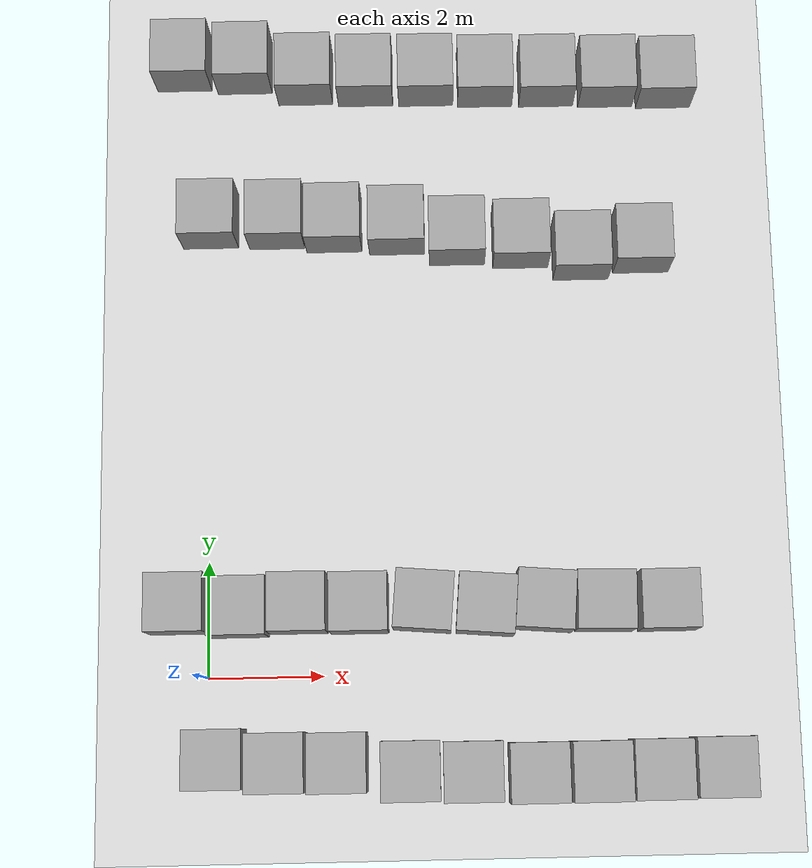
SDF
<sdf version="1.7">
 <world name="default">
  <model name="ground_plane">
   <static>1</static>
   <link name="link">
    <collision name="collision">
     <geometry><plane><normal>0 0 1</normal><size>100 100</size></plane></geometry>
     <surface><friction><ode><mu>100</mu><mu2>50</mu2></ode></friction></surface>
    </collision>
    <visual name="visual">
     <cast_shadows>0</cast_shadows>
     <geometry><plane><normal>0 0 1</normal><size>100 100</size></plane></geometry>
     <material>
      <script><uri>file://media/materials/scripts/gazebo.material</uri><name>Gazebo/Grey</name></script>
     </material>
    </visual>
   </link>
  </model>
  <model name="unit_box">
   <pose>0.555507 1.19168 0.499995 0 1e-05 0</pose>
   <link name="link">
    <inertial>
     <mass>1</mass>
     <inertia>
      <ixx>0.166667</ixx>
      <ixy>0</ixy>
      <ixz>0</ixz>
      <iyy>0.166667</iyy>
      <iyz>0</iyz>
      <izz>0.166667</izz>
     </inertia>
    </inertial>
    <collision name="collision"><geometry><box><size>1 1 1</size></box></geometry></collision>
    <visual name="visual">
     <geometry><box><size>1 1 1</size></box></geometry>
     <material>
      <script><name>Gazebo/Grey</name><uri>file://media/materials/scripts/gazebo.material</uri></script>
     </material>
    </visual>
   </link>
  </model>
  <model name="unit_box_0">
   <pose>1.57825 1.23788 0.499995 0 -1e-05 0</pose>
   <link name="link">
    <inertial>
     <mass>1</mass>
     <inertia>
      <ixx>0.166667</ixx>
      <ixy>0</ixy>
      <ixz>0</ixz>
      <iyy>0.166667</iyy>
      <iyz>0</iyz>
      <izz>0.166667</izz>
     </inertia>
    </inertial>
    <collision name="collision"><geometry><box><size>1 1 1</size></box></geometry></collision>
    <visual name="visual">
     <geometry><box><size>1 1 1</size></box></geometry>
     <material>
      <script><name>Gazebo/Grey</name><uri>file://media/materials/scripts/gazebo.material</uri></script>
     </material>
    </visual>
   </link>
  </model>
  <model name="unit_box_1">
   <pose>2.63146 1.21638 0.499995 0 1e-05 0</pose>
   <link name="link">
    <inertial>
     <mass>1</mass>
     <inertia>
      <ixx>0.166667</ixx>
      <ixy>0</ixy>
      <ixz>0</ixz>
      <iyy>0.166667</iyy>
      <iyz>0</iyz>
      <izz>0.166667</izz>
     </inertia>
    </inertial>
    <collision name="collision"><geometry><box><size>1 1 1</size></box></geometry></collision>
    <visual name="visual">
     <geometry><box><size>1 1 1</size></box></geometry>
     <material>
      <script><name>Gazebo/Grey</name><uri>file://media/materials/scripts/gazebo.material</uri></script>
     </material>
    </visual>
   </link>
  </model>
  <model name="unit_box_2">
   <pose>3.74606 1.22705 0.499995 -1e-05 -0 -0.082022</pose>
   <link name="link">
    <inertial>
     <mass>1</mass>
     <inertia>
      <ixx>0.166667</ixx>
      <ixy>0</ixy>
      <ixz>0</ixz>
      <iyy>0.166667</iyy>
      <iyz>0</iyz>
      <izz>0.166667</izz>
     </inertia>
    </inertial>
    <collision name="collision"><geometry><box><size>1 1 1</size></box></geometry></collision>
    <visual name="visual">
     <geometry><box><size>1 1 1</size></box></geometry>
     <material>
      <script><name>Gazebo/Grey</name><uri>file://media/materials/scripts/gazebo.material</uri></script>
     </material>
    </visual>
   </link>
  </model>
  <model name="unit_box_3">
   <pose>4.82643 1.14872 0.499995 -1e-05 0 -0.080673</pose>
   <link name="link">
    <inertial>
     <mass>1</mass>
     <inertia>
      <ixx>0.166667</ixx>
      <ixy>0</ixy>
      <ixz>0</ixz>
      <iyy>0.166667</iyy>
      <iyz>0</iyz>
      <izz>0.166667</izz>
     </inertia>
    </inertial>
    <collision name="collision"><geometry><box><size>1 1 1</size></box></geometry></collision>
    <visual name="visual">
     <geometry><box><size>1 1 1</size></box></geometry>
     <material>
      <script><name>Gazebo/Grey</name><uri>file://media/materials/scripts/gazebo.material</uri></script>
     </material>
    </visual>
   </link>
  </model>
  <model name="unit_box_4">
   <pose>5.83439 1.19515 0.499995 -1e-05 -0 -0.078203</pose>
   <link name="link">
    <inertial>
     <mass>1</mass>
     <inertia>
      <ixx>0.166667</ixx>
      <ixy>0</ixy>
      <ixz>0</ixz>
      <iyy>0.166667</iyy>
      <iyz>0</iyz>
      <izz>0.166667</izz>
     </inertia>
    </inertial>
    <collision name="collision"><geometry><box><size>1 1 1</size></box></geometry></collision>
    <visual name="visual">
     <geometry><box><size>1 1 1</size></box></geometry>
     <material>
      <script><name>Gazebo/Grey</name><uri>file://media/materials/scripts/gazebo.material</uri></script>
     </material>
    </visual>
   </link>
  </model>
  <model name="unit_box_5">
   <pose>6.86221 1.16701 0.499995 -1e-05 -0 -0.020162</pose>
   <link name="link">
    <inertial>
     <mass>1</mass>
     <inertia>
      <ixx>0.166667</ixx>
      <ixy>0</ixy>
      <ixz>0</ixz>
      <iyy>0.166667</iyy>
      <iyz>0</iyz>
      <izz>0.166667</izz>
     </inertia>
    </inertial>
    <collision name="collision"><geometry><box><size>1 1 1</size></box></geometry></collision>
    <visual name="visual">
     <geometry><box><size>1 1 1</size></box></geometry>
     <material>
      <script><name>Gazebo/Grey</name><uri>file://media/materials/scripts/gazebo.material</uri></script>
     </material>
    </visual>
   </link>
  </model>
  <model name="unit_box_6">
   <pose>7.9487 1.15327 0.499995 -1e-05 0 0</pose>
   <link name="link">
    <inertial>
     <mass>1</mass>
     <inertia>
      <ixx>0.166667</ixx>
      <ixy>0</ixy>
      <ixz>0</ixz>
      <iyy>0.166667</iyy>
      <iyz>0</iyz>
      <izz>0.166667</izz>
     </inertia>
    </inertial>
    <collision name="collision"><geometry><box><size>1 1 1</size></box></geometry></collision>
    <visual name="visual">
     <geometry><box><size>1 1 1</size></box></geometry>
     <material>
      <script><name>Gazebo/Grey</name><uri>file://media/materials/scripts/gazebo.material</uri></script>
     </material>
    </visual>
   </link>
  </model>
  <model name="unit_box_8">
   <pose>8.76045 -1.66109 0.499995 0 -1e-05 0</pose>
   <link name="link">
    <inertial>
     <mass>1</mass>
     <inertia>
      <ixx>0.166667</ixx>
      <ixy>0</ixy>
      <ixz>0</ixz>
      <iyy>0.166667</iyy>
      <iyz>0</iyz>
      <izz>0.166667</izz>
     </inertia>
    </inertial>
    <collision name="collision"><geometry><box><size>1 1 1</size></box></geometry></collision>
    <visual name="visual">
     <geometry><box><size>1 1 1</size></box></geometry>
     <material>
      <script><name>Gazebo/Grey</name><uri>file://media/materials/scripts/gazebo.material</uri></script>
     </material>
    </visual>
   </link>
  </model>
  <model name="unit_box_9">
   <pose>7.71543 -1.67512 0.499995 0 1e-05 0</pose>
   <link name="link">
    <inertial>
     <mass>1</mass>
     <inertia>
      <ixx>0.166667</ixx>
      <ixy>0</ixy>
      <ixz>0</ixz>
      <iyy>0.166667</iyy>
      <iyz>0</iyz>
      <izz>0.166667</izz>
     </inertia>
    </inertial>
    <collision name="collision"><geometry><box><size>1 1 1</size></box></geometry></collision>
    <visual name="visual">
     <geometry><box><size>1 1 1</size></box></geometry>
     <material>
      <script><name>Gazebo/Grey</name><uri>file://media/materials/scripts/gazebo.material</uri></script>
     </material>
    </visual>
   </link>
  </model>
  <model name="unit_box_10">
   <pose>6.68845 -1.68927 0.499995 -1e-05 0 0</pose>
   <link name="link">
    <inertial>
     <mass>1</mass>
     <inertia>
      <ixx>0.166667</ixx>
      <ixy>0</ixy>
      <ixz>0</ixz>
      <iyy>0.166667</iyy>
      <iyz>0</iyz>
      <izz>0.166667</izz>
     </inertia>
    </inertial>
    <collision name="collision"><geometry><box><size>1 1 1</size></box></geometry></collision>
    <visual name="visual">
     <geometry><box><size>1 1 1</size></box></geometry>
     <material>
      <script><name>Gazebo/Grey</name><uri>file://media/materials/scripts/gazebo.material</uri></script>
     </material>
    </visual>
   </link>
  </model>
  <model name="unit_box_11">
   <pose>5.63972 -1.68978 0.499995 0 1e-05 0</pose>
   <link name="link">
    <inertial>
     <mass>1</mass>
     <inertia>
      <ixx>0.166667</ixx>
      <ixy>0</ixy>
      <ixz>0</ixz>
      <iyy>0.166667</iyy>
      <iyz>0</iyz>
      <izz>0.166667</izz>
     </inertia>
    </inertial>
    <collision name="collision"><geometry><box><size>1 1 1</size></box></geometry></collision>
    <visual name="visual">
     <geometry><box><size>1 1 1</size></box></geometry>
     <material>
      <script><name>Gazebo/Grey</name><uri>file://media/materials/scripts/gazebo.material</uri></script>
     </material>
    </visual>
   </link>
  </model>
  <model name="unit_box_12">
   <pose>4.52806 -1.6504 0.499995 -1e-05 0 0</pose>
   <link name="link">
    <inertial>
     <mass>1</mass>
     <inertia>
      <ixx>0.166667</ixx>
      <ixy>0</ixy>
      <ixz>0</ixz>
      <iyy>0.166667</iyy>
      <iyz>0</iyz>
      <izz>0.166667</izz>
     </inertia>
    </inertial>
    <collision name="collision"><geometry><box><size>1 1 1</size></box></geometry></collision>
    <visual name="visual">
     <geometry><box><size>1 1 1</size></box></geometry>
     <material>
      <script><name>Gazebo/Grey</name><uri>file://media/materials/scripts/gazebo.material</uri></script>
     </material>
    </visual>
   </link>
  </model>
  <model name="unit_box_13">
   <pose>3.47624 -1.6198 0.499995 0 1e-05 0</pose>
   <link name="link">
    <inertial>
     <mass>1</mass>
     <inertia>
      <ixx>0.166667</ixx>
      <ixy>0</ixy>
      <ixz>0</ixz>
      <iyy>0.166667</iyy>
      <iyz>0</iyz>
      <izz>0.166667</izz>
     </inertia>
    </inertial>
    <collision name="collision"><geometry><box><size>1 1 1</size></box></geometry></collision>
    <visual name="visual">
     <geometry><box><size>1 1 1</size></box></geometry>
     <material>
      <script><name>Gazebo/Grey</name><uri>file://media/materials/scripts/gazebo.material</uri></script>
     </material>
    </visual>
   </link>
  </model>
  <model name="unit_box_14">
   <pose>2.2423 -1.45852 0.499995 0 -1e-05 0</pose>
   <link name="link">
    <inertial>
     <mass>1</mass>
     <inertia>
      <ixx>0.166667</ixx>
      <ixy>0</ixy>
      <ixz>0</ixz>
      <iyy>0.166667</iyy>
      <iyz>0</iyz>
      <izz>0.166667</izz>
     </inertia>
    </inertial>
    <collision name="collision"><geometry><box><size>1 1 1</size></box></geometry></collision>
    <visual name="visual">
     <geometry><box><size>1 1 1</size></box></geometry>
     <material>
      <script><name>Gazebo/Grey</name><uri>file://media/materials/scripts/gazebo.material</uri></script>
     </material>
    </visual>
   </link>
  </model>
  <model name="unit_box_15">
   <pose>1.19901 -1.44068 0.5 -0 -0 -0</pose>
   <link name="link">
    <inertial>
     <mass>1</mass>
     <inertia>
      <ixx>0.166667</ixx>
      <ixy>0</ixy>
      <ixz>0</ixz>
      <iyy>0.166667</iyy>
      <iyz>0</iyz>
      <izz>0.166667</izz>
     </inertia>
    </inertial>
    <collision name="collision"><geometry><box><size>1 1 1</size></box></geometry></collision>
    <visual name="visual">
     <geometry><box><size>1 1 1</size></box></geometry>
     <material>
      <script><name>Gazebo/Grey</name><uri>file://media/materials/scripts/gazebo.material</uri></script>
     </material>
    </visual>
   </link>
  </model>
  <model name="unit_box_46">
   <pose>8.33103 10.7601 0.499995 -1e-05 0 0</pose>
   <link name="link">
    <inertial>
     <mass>1</mass>
     <inertia>
      <ixx>0.166667</ixx>
      <ixy>0</ixy>
      <ixz>0</ixz>
      <iyy>0.166667</iyy>
      <iyz>0</iyz>
      <izz>0.166667</izz>
     </inertia>
    </inertial>
    <collision name="collision"><geometry><box><size>1 1 1</size></box></geometry></collision>
    <visual name="visual">
     <geometry><box><size>1 1 1</size></box></geometry>
     <material>
      <script><name>Gazebo/Grey</name><uri>file://media/materials/scripts/gazebo.material</uri></script>
     </material>
    </visual>
   </link>
  </model>
  <model name="unit_box_52">
   <pose>7.26487 10.8009 0.499995 0 1e-05 0</pose>
   <link name="link">
    <inertial>
     <mass>1</mass>
     <inertia>
      <ixx>0.166667</ixx>
      <ixy>0</ixy>
      <ixz>0</ixz>
      <iyy>0.166667</iyy>
      <iyz>0</iyz>
      <izz>0.166667</izz>
     </inertia>
    </inertial>
    <collision name="collision"><geometry><box><size>1 1 1</size></box></geometry></collision>
    <visual name="visual">
     <geometry><box><size>1 1 1</size></box></geometry>
     <material>
      <script><name>Gazebo/Grey</name><uri>file://media/materials/scripts/gazebo.material</uri></script>
     </material>
    </visual>
   </link>
  </model>
  <model name="unit_box_53">
   <pose>6.17175 10.8343 0.499995 -1e-05 0 0</pose>
   <link name="link">
    <inertial>
     <mass>1</mass>
     <inertia>
      <ixx>0.166667</ixx>
      <ixy>0</ixy>
      <ixz>0</ixz>
      <iyy>0.166667</iyy>
      <iyz>0</iyz>
      <izz>0.166667</izz>
     </inertia>
    </inertial>
    <collision name="collision"><geometry><box><size>1 1 1</size></box></geometry></collision>
    <visual name="visual">
     <geometry><box><size>1 1 1</size></box></geometry>
     <material>
      <script><name>Gazebo/Grey</name><uri>file://media/materials/scripts/gazebo.material</uri></script>
     </material>
    </visual>
   </link>
  </model>
  <model name="unit_box_54">
   <pose>5.04461 10.852 0.499995 0 1e-05 0</pose>
   <link name="link">
    <inertial>
     <mass>1</mass>
     <inertia>
      <ixx>0.166667</ixx>
      <ixy>0</ixy>
      <ixz>0</ixz>
      <iyy>0.166667</iyy>
      <iyz>0</iyz>
      <izz>0.166667</izz>
     </inertia>
    </inertial>
    <collision name="collision"><geometry><box><size>1 1 1</size></box></geometry></collision>
    <visual name="visual">
     <geometry><box><size>1 1 1</size></box></geometry>
     <material>
      <script><name>Gazebo/Grey</name><uri>file://media/materials/scripts/gazebo.material</uri></script>
     </material>
    </visual>
   </link>
  </model>
  <model name="unit_box_55">
   <pose>3.95809 10.893 0.499995 -1e-05 0 0</pose>
   <link name="link">
    <inertial>
     <mass>1</mass>
     <inertia>
      <ixx>0.166667</ixx>
      <ixy>0</ixy>
      <ixz>0</ixz>
      <iyy>0.166667</iyy>
      <iyz>0</iyz>
      <izz>0.166667</izz>
     </inertia>
    </inertial>
    <collision name="collision"><geometry><box><size>1 1 1</size></box></geometry></collision>
    <visual name="visual">
     <geometry><box><size>1 1 1</size></box></geometry>
     <material>
      <script><name>Gazebo/Grey</name><uri>file://media/materials/scripts/gazebo.material</uri></script>
     </material>
    </visual>
   </link>
  </model>
  <model name="unit_box_56">
   <pose>7.78281 7.61521 0.499995 1e-05 -0 0</pose>
   <link name="link">
    <inertial>
     <mass>1</mass>
     <inertia>
      <ixx>0.166667</ixx>
      <ixy>0</ixy>
      <ixz>0</ixz>
      <iyy>0.166667</iyy>
      <iyz>0</iyz>
      <izz>0.166667</izz>
     </inertia>
    </inertial>
    <collision name="collision"><geometry><box><size>1 1 1</size></box></geometry></collision>
    <visual name="visual">
     <geometry><box><size>1 1 1</size></box></geometry>
     <material>
      <script><name>Gazebo/Grey</name><uri>file://media/materials/scripts/gazebo.material</uri></script>
     </material>
    </visual>
   </link>
  </model>
  <model name="unit_box_57">
   <pose>6.69164 7.50635 0.499995 -1e-05 0 0</pose>
   <link name="link">
    <inertial>
     <mass>1</mass>
     <inertia>
      <ixx>0.166667</ixx>
      <ixy>0</ixy>
      <ixz>0</ixz>
      <iyy>0.166667</iyy>
      <iyz>0</iyz>
      <izz>0.166667</izz>
     </inertia>
    </inertial>
    <collision name="collision"><geometry><box><size>1 1 1</size></box></geometry></collision>
    <visual name="visual">
     <geometry><box><size>1 1 1</size></box></geometry>
     <material>
      <script><name>Gazebo/Grey</name><uri>file://media/materials/scripts/gazebo.material</uri></script>
     </material>
    </visual>
   </link>
  </model>
  <model name="unit_box_58">
   <pose>5.60862 7.74772 0.499995 1e-05 -0 0</pose>
   <link name="link">
    <inertial>
     <mass>1</mass>
     <inertia>
      <ixx>0.166667</ixx>
      <ixy>0</ixy>
      <ixz>0</ixz>
      <iyy>0.166667</iyy>
      <iyz>0</iyz>
      <izz>0.166667</izz>
     </inertia>
    </inertial>
    <collision name="collision"><geometry><box><size>1 1 1</size></box></geometry></collision>
    <visual name="visual">
     <geometry><box><size>1 1 1</size></box></geometry>
     <material>
      <script><name>Gazebo/Grey</name><uri>file://media/materials/scripts/gazebo.material</uri></script>
     </material>
    </visual>
   </link>
  </model>
  <model name="unit_box_59">
   <pose>4.46278 7.82964 0.499995 0 1e-05 0</pose>
   <link name="link">
    <inertial>
     <mass>1</mass>
     <inertia>
      <ixx>0.166667</ixx>
      <ixy>0</ixy>
      <ixz>0</ixz>
      <iyy>0.166667</iyy>
      <iyz>0</iyz>
      <izz>0.166667</izz>
     </inertia>
    </inertial>
    <collision name="collision"><geometry><box><size>1 1 1</size></box></geometry></collision>
    <visual name="visual">
     <geometry><box><size>1 1 1</size></box></geometry>
     <material>
      <script><name>Gazebo/Grey</name><uri>file://media/materials/scripts/gazebo.material</uri></script>
     </material>
    </visual>
   </link>
  </model>
  <model name="unit_box_60">
   <pose>2.84719 10.9112 0.499995 -1e-05 0 0</pose>
   <link name="link">
    <inertial>
     <mass>1</mass>
     <inertia>
      <ixx>0.166667</ixx>
      <ixy>0</ixy>
      <ixz>0</ixz>
      <iyy>0.166667</iyy>
      <iyz>0</iyz>
      <izz>0.166667</izz>
     </inertia>
    </inertial>
    <collision name="collision"><geometry><box><size>1 1 1</size></box></geometry></collision>
    <visual name="visual">
     <geometry><box><size>1 1 1</size></box></geometry>
     <material>
      <script><name>Gazebo/Grey</name><uri>file://media/materials/scripts/gazebo.material</uri></script>
     </material>
    </visual>
   </link>
  </model>
  <model name="unit_box_61">
   <pose>1.73992 10.9582 0.499995 0 1e-05 0</pose>
   <link name="link">
    <inertial>
     <mass>1</mass>
     <inertia>
      <ixx>0.166667</ixx>
      <ixy>0</ixy>
      <ixz>0</ixz>
      <iyy>0.166667</iyy>
      <iyz>0</iyz>
      <izz>0.166667</izz>
     </inertia>
    </inertial>
    <collision name="collision"><geometry><box><size>1 1 1</size></box></geometry></collision>
    <visual name="visual">
     <geometry><box><size>1 1 1</size></box></geometry>
     <material>
      <script><name>Gazebo/Grey</name><uri>file://media/materials/scripts/gazebo.material</uri></script>
     </material>
    </visual>
   </link>
  </model>
  <model name="unit_box_62">
   <pose>0.619512 11.197 0.499995 -1e-05 -0 0</pose>
   <link name="link">
    <inertial>
     <mass>1</mass>
     <inertia>
      <ixx>0.166667</ixx>
      <ixy>0</ixy>
      <ixz>0</ixz>
      <iyy>0.166667</iyy>
      <iyz>0</iyz>
      <izz>0.166667</izz>
     </inertia>
    </inertial>
    <collision name="collision"><geometry><box><size>1 1 1</size></box></geometry></collision>
    <visual name="visual">
     <geometry><box><size>1 1 1</size></box></geometry>
     <material>
      <script><name>Gazebo/Grey</name><uri>file://media/materials/scripts/gazebo.material</uri></script>
     </material>
    </visual>
   </link>
  </model>
  <model name="unit_box_63">
   <pose>3.38354 8.04833 0.499995 0 1e-05 0</pose>
   <link name="link">
    <inertial>
     <mass>1</mass>
     <inertia>
      <ixx>0.166667</ixx>
      <ixy>0</ixy>
      <ixz>0</ixz>
      <iyy>0.166667</iyy>
      <iyz>0</iyz>
      <izz>0.166667</izz>
     </inertia>
    </inertial>
    <collision name="collision"><geometry><box><size>1 1 1</size></box></geometry></collision>
    <visual name="visual">
     <geometry><box><size>1 1 1</size></box></geometry>
     <material>
      <script><name>Gazebo/Grey</name><uri>file://media/materials/scripts/gazebo.material</uri></script>
     </material>
    </visual>
   </link>
  </model>
  <model name="unit_box_64">
   <pose>2.24413 8.11599 0.499995 -1e-05 0 0</pose>
   <link name="link">
    <inertial>
     <mass>1</mass>
     <inertia>
      <ixx>0.166667</ixx>
      <ixy>0</ixy>
      <ixz>0</ixz>
      <iyy>0.166667</iyy>
      <iyz>0</iyz>
      <izz>0.166667</izz>
     </inertia>
    </inertial>
    <collision name="collision"><geometry><box><size>1 1 1</size></box></geometry></collision>
    <visual name="visual">
     <geometry><box><size>1 1 1</size></box></geometry>
     <material>
      <script><name>Gazebo/Grey</name><uri>file://media/materials/scripts/gazebo.material</uri></script>
     </material>
    </visual>
   </link>
  </model>
  <model name="unit_box_65">
   <pose>1.20797 8.19953 0.499995 0 1e-05 0</pose>
   <link name="link">
    <inertial>
     <mass>1</mass>
     <inertia>
      <ixx>0.166667</ixx>
      <ixy>0</ixy>
      <ixz>0</ixz>
      <iyy>0.166667</iyy>
      <iyz>0</iyz>
      <izz>0.166667</izz>
     </inertia>
    </inertial>
    <collision name="collision"><geometry><box><size>1 1 1</size></box></geometry></collision>
    <visual name="visual">
     <geometry><box><size>1 1 1</size></box></geometry>
     <material>
      <script><name>Gazebo/Grey</name><uri>file://media/materials/scripts/gazebo.material</uri></script>
     </material>
    </visual>
   </link>
  </model>
  <model name="unit_box_66">
   <pose>-0.495272 11.2728 0.499995 1e-05 -0 0</pose>
   <link name="link">
    <inertial>
     <mass>1</mass>
     <inertia>
      <ixx>0.166667</ixx>
      <ixy>0</ixy>
      <ixz>0</ixz>
      <iyy>0.166667</iyy>
      <iyz>0</iyz>
      <izz>0.166667</izz>
     </inertia>
    </inertial>
    <collision name="collision"><geometry><box><size>1 1 1</size></box></geometry></collision>
    <visual name="visual">
     <geometry><box><size>1 1 1</size></box></geometry>
     <material>
      <script><name>Gazebo/Grey</name><uri>file://media/materials/scripts/gazebo.material</uri></script>
     </material>
    </visual>
   </link>
  </model>
  <model name="unit_box_67">
   <pose>0.003792 8.23484 0.499995 -1e-05 0 0</pose>
   <link name="link">
    <inertial>
     <mass>1</mass>
     <inertia>
      <ixx>0.166667</ixx>
      <ixy>0</ixy>
      <ixz>0</ixz>
      <iyy>0.166667</iyy>
      <iyz>0</iyz>
      <izz>0.166667</izz>
     </inertia>
    </inertial>
    <collision name="collision"><geometry><box><size>1 1 1</size></box></geometry></collision>
    <visual name="visual">
     <geometry><box><size>1 1 1</size></box></geometry>
     <material>
      <script><name>Gazebo/Grey</name><uri>file://media/materials/scripts/gazebo.material</uri></script>
     </material>
    </visual>
   </link>
  </model>
  <model name="unit_box_126">
   <pose>-0.500907 1.27134 0.499995 0 -1e-05 0</pose>
   <link name="link">
    <inertial>
     <mass>1</mass>
     <inertia>
      <ixx>0.166667</ixx>
      <ixy>0</ixy>
      <ixz>0</ixz>
      <iyy>0.166667</iyy>
      <iyz>0</iyz>
      <izz>0.166667</izz>
     </inertia>
    </inertial>
    <collision name="collision"><geometry><box><size>1 1 1</size></box></geometry></collision>
    <visual name="visual">
     <geometry><box><size>1 1 1</size></box></geometry>
     <material>
      <script><name>Gazebo/Grey</name><uri>file://media/materials/scripts/gazebo.material</uri></script>
     </material>
    </visual>
   </link>
  </model>
  <model name="unit_box_127">
   <pose>0.15774 -1.36253 0.499995 0 1e-05 0</pose>
   <link name="link">
    <inertial>
     <mass>1</mass>
     <inertia>
      <ixx>0.166667</ixx>
      <ixy>0</ixy>
      <ixz>0</ixz>
      <iyy>0.166667</iyy>
      <iyz>0</iyz>
      <izz>0.166667</izz>
     </inertia>
    </inertial>
    <collision name="collision"><geometry><box><size>1 1 1</size></box></geometry></collision>
    <visual name="visual">
     <geometry><box><size>1 1 1</size></box></geometry>
     <material>
      <script><name>Gazebo/Grey</name><uri>file://media/materials/scripts/gazebo.material</uri></script>
     </material>
    </visual>
   </link>
  </model>
 </world>
</sdf>
